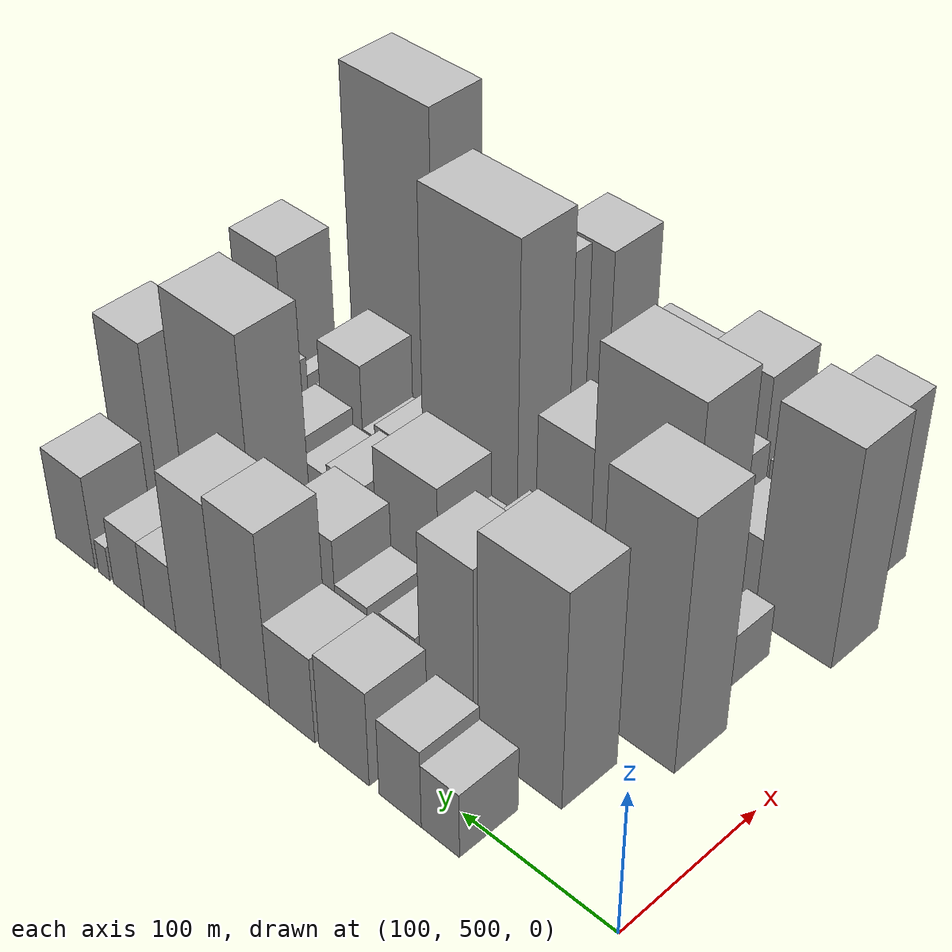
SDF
<sdf version="1.6">
 <world name="default">
  <model name="building_39">
   <static>1</static>
   <pose>100.0000 595.1342 0 0.000000 0.000000 0.000000</pose>
   <link name="link">
    <pose>0 0 22.50 0 0 0</pose>
    <collision name="collision"><geometry><box><size>40.0000 25.6913 45.0000</size></box></geometry></collision>
    <visual name="visual">
     <cast_shadows>0</cast_shadows>
     <geometry><box><size>40.0000 25.6913 45.0000</size></box></geometry>
     <material>
      <script>
       <uri>model://HANNAS_wall/materials/scripts</uri>
       <uri>model://HANNAS_wall/materials/textures</uri>
       <name>vrc/HANNAS_wall</name>
      </script>
     </material>
    </visual>
   </link>
  </model>
  <model name="building_40">
   <static>1</static>
   <pose>100.0000 622.6248 0 0.000000 0.000000 0.000000</pose>
   <link name="link">
    <pose>0 0 27.00 0 0 0</pose>
    <collision name="collision"><geometry><box><size>40.0000 29.2899 54.0000</size></box></geometry></collision>
    <visual name="visual">
     <cast_shadows>0</cast_shadows>
     <geometry><box><size>40.0000 29.2899 54.0000</size></box></geometry>
     <material>
      <script>
       <uri>model://HANNAS_wall/materials/scripts</uri>
       <uri>model://HANNAS_wall/materials/textures</uri>
       <name>vrc/HANNAS_wall</name>
      </script>
     </material>
    </visual>
   </link>
  </model>
  <model name="building_41">
   <static>1</static>
   <pose>100.0000 662.3822 0 0.000000 0.000000 0.000000</pose>
   <link name="link">
    <pose>0 0 33.00 0 0 0</pose>
    <collision name="collision"><geometry><box><size>40.0000 36.2250 66.0000</size></box></geometry></collision>
    <visual name="visual">
     <cast_shadows>0</cast_shadows>
     <geometry><box><size>40.0000 36.2250 66.0000</size></box></geometry>
     <material>
      <script>
       <uri>model://HANNAS_wall/materials/scripts</uri>
       <uri>model://HANNAS_wall/materials/textures</uri>
       <name>vrc/HANNAS_wall</name>
      </script>
     </material>
    </visual>
   </link>
  </model>
  <model name="building_42">
   <static>1</static>
   <pose>100.0000 700.5594 0 0.000000 0.000000 0.000000</pose>
   <link name="link">
    <pose>0 0 30.00 0 0 0</pose>
    <collision name="collision"><geometry><box><size>40.0000 34.1293 60.0000</size></box></geometry></collision>
    <visual name="visual">
     <cast_shadows>0</cast_shadows>
     <geometry><box><size>40.0000 34.1293 60.0000</size></box></geometry>
     <material>
      <script>
       <uri>model://HANNAS_wall/materials/scripts</uri>
       <uri>model://HANNAS_wall/materials/textures</uri>
       <name>vrc/HANNAS_wall</name>
      </script>
     </material>
    </visual>
   </link>
  </model>
  <model name="building_43">
   <static>1</static>
   <pose>100.0000 736.5330 0 0.000000 0.000000 0.000000</pose>
   <link name="link">
    <pose>0 0 60.00 0 0 0</pose>
    <collision name="collision"><geometry><box><size>40.0000 37.8179 120.0000</size></box></geometry></collision>
    <visual name="visual">
     <cast_shadows>0</cast_shadows>
     <geometry><box><size>40.0000 37.8179 120.0000</size></box></geometry>
     <material>
      <script>
       <uri>model://HANNAS_wall/materials/scripts</uri>
       <uri>model://HANNAS_wall/materials/textures</uri>
       <name>vrc/HANNAS_wall</name>
      </script>
     </material>
    </visual>
   </link>
  </model>
  <model name="building_44">
   <static>1</static>
   <pose>100.0000 773.5364 0 0.000000 0.000000 0.000000</pose>
   <link name="link">
    <pose>0 0 57.00 0 0 0</pose>
    <collision name="collision"><geometry><box><size>40.0000 36.1888 114.0000</size></box></geometry></collision>
    <visual name="visual">
     <cast_shadows>0</cast_shadows>
     <geometry><box><size>40.0000 36.1888 114.0000</size></box></geometry>
     <material>
      <script>
       <uri>model://HANNAS_wall/materials/scripts</uri>
       <uri>model://HANNAS_wall/materials/textures</uri>
       <name>vrc/HANNAS_wall</name>
      </script>
     </material>
    </visual>
   </link>
  </model>
  <model name="building_45">
   <static>1</static>
   <pose>100.0000 804.7815 0 0.000000 0.000000 0.000000</pose>
   <link name="link">
    <pose>0 0 24.00 0 0 0</pose>
    <collision name="collision"><geometry><box><size>40.0000 26.3016 48.0000</size></box></geometry></collision>
    <visual name="visual">
     <cast_shadows>0</cast_shadows>
     <geometry><box><size>40.0000 26.3016 48.0000</size></box></geometry>
     <material>
      <script>
       <uri>model://HANNAS_wall/materials/scripts</uri>
       <uri>model://HANNAS_wall/materials/textures</uri>
       <name>vrc/HANNAS_wall</name>
      </script>
     </material>
    </visual>
   </link>
  </model>
  <model name="building_46">
   <static>1</static>
   <pose>100.0000 831.1495 0 0.000000 0.000000 0.000000</pose>
   <link name="link">
    <pose>0 0 24.00 0 0 0</pose>
    <collision name="collision"><geometry><box><size>40.0000 26.4344 48.0000</size></box></geometry></collision>
    <visual name="visual">
     <cast_shadows>0</cast_shadows>
     <geometry><box><size>40.0000 26.4344 48.0000</size></box></geometry>
     <material>
      <script>
       <uri>model://HANNAS_wall/materials/scripts</uri>
       <uri>model://HANNAS_wall/materials/textures</uri>
       <name>vrc/HANNAS_wall</name>
      </script>
     </material>
    </visual>
   </link>
  </model>
  <model name="building_47">
   <static>1</static>
   <pose>100.0000 852.3052 0 0.000000 0.000000 0.000000</pose>
   <link name="link">
    <pose>0 0 12.00 0 0 0</pose>
    <collision name="collision"><geometry><box><size>40.0000 9.8770 24.0000</size></box></geometry></collision>
    <visual name="visual">
     <cast_shadows>0</cast_shadows>
     <geometry><box><size>40.0000 9.8770 24.0000</size></box></geometry>
     <material>
      <script>
       <uri>model://HANNAS_wall/materials/scripts</uri>
       <uri>model://HANNAS_wall/materials/textures</uri>
       <name>vrc/HANNAS_wall</name>
      </script>
     </material>
    </visual>
   </link>
  </model>
  <model name="building_48">
   <static>1</static>
   <pose>100.0000 877.6894 0 0.000000 0.000000 0.000000</pose>
   <link name="link">
    <pose>0 0 33.00 0 0 0</pose>
    <collision name="collision"><geometry><box><size>40.0000 34.8914 66.0000</size></box></geometry></collision>
    <visual name="visual">
     <cast_shadows>0</cast_shadows>
     <geometry><box><size>40.0000 34.8914 66.0000</size></box></geometry>
     <material>
      <script>
       <uri>model://HANNAS_wall/materials/scripts</uri>
       <uri>model://HANNAS_wall/materials/textures</uri>
       <name>vrc/HANNAS_wall</name>
      </script>
     </material>
    </visual>
   </link>
  </model>
  <model name="building_87">
   <static>1</static>
   <pose>155.0000 595.8088 0 0.000000 0.000000 0.000000</pose>
   <link name="link">
    <pose>0 0 73.50 0 0 0</pose>
    <collision name="collision"><geometry><box><size>40.0000 56.7399 147.0000</size></box></geometry></collision>
    <visual name="visual">
     <cast_shadows>0</cast_shadows>
     <geometry><box><size>40.0000 56.7399 147.0000</size></box></geometry>
     <material>
      <script>
       <uri>model://HANNAS_wall/materials/scripts</uri>
       <uri>model://HANNAS_wall/materials/textures</uri>
       <name>vrc/HANNAS_wall</name>
      </script>
     </material>
    </visual>
   </link>
  </model>
  <model name="building_88">
   <static>1</static>
   <pose>155.0000 645.8658 0 0.000000 0.000000 0.000000</pose>
   <link name="link">
    <pose>0 0 60.00 0 0 0</pose>
    <collision name="collision"><geometry><box><size>40.0000 37.3742 120.0000</size></box></geometry></collision>
    <visual name="visual">
     <cast_shadows>0</cast_shadows>
     <geometry><box><size>40.0000 37.3742 120.0000</size></box></geometry>
     <material>
      <script>
       <uri>model://HANNAS_wall/materials/scripts</uri>
       <uri>model://HANNAS_wall/materials/textures</uri>
       <name>vrc/HANNAS_wall</name>
      </script>
     </material>
    </visual>
   </link>
  </model>
  <model name="building_89">
   <static>1</static>
   <pose>155.0000 680.4578 0 0.000000 0.000000 0.000000</pose>
   <link name="link">
    <pose>0 0 22.50 0 0 0</pose>
    <collision name="collision"><geometry><box><size>40.0000 25.8099 45.0000</size></box></geometry></collision>
    <visual name="visual">
     <cast_shadows>0</cast_shadows>
     <geometry><box><size>40.0000 25.8099 45.0000</size></box></geometry>
     <material>
      <script>
       <uri>model://HANNAS_wall/materials/scripts</uri>
       <uri>model://HANNAS_wall/materials/textures</uri>
       <name>vrc/HANNAS_wall</name>
      </script>
     </material>
    </visual>
   </link>
  </model>
  <model name="building_90">
   <static>1</static>
   <pose>155.0000 714.4430 0 0.000000 0.000000 0.000000</pose>
   <link name="link">
    <pose>0 0 21.00 0 0 0</pose>
    <collision name="collision"><geometry><box><size>40.0000 24.1605 42.0000</size></box></geometry></collision>
    <visual name="visual">
     <cast_shadows>0</cast_shadows>
     <geometry><box><size>40.0000 24.1605 42.0000</size></box></geometry>
     <material>
      <script>
       <uri>model://HANNAS_wall/materials/scripts</uri>
       <uri>model://HANNAS_wall/materials/textures</uri>
       <name>vrc/HANNAS_wall</name>
      </script>
     </material>
    </visual>
   </link>
  </model>
  <model name="building_91">
   <static>1</static>
   <pose>155.0000 746.9468 0 0.000000 0.000000 0.000000</pose>
   <link name="link">
    <pose>0 0 36.00 0 0 0</pose>
    <collision name="collision"><geometry><box><size>40.0000 40.8471 72.0000</size></box></geometry></collision>
    <visual name="visual">
     <cast_shadows>0</cast_shadows>
     <geometry><box><size>40.0000 40.8471 72.0000</size></box></geometry>
     <material>
      <script>
       <uri>model://HANNAS_wall/materials/scripts</uri>
       <uri>model://HANNAS_wall/materials/textures</uri>
       <name>vrc/HANNAS_wall</name>
      </script>
     </material>
    </visual>
   </link>
  </model>
  <model name="building_92">
   <static>1</static>
   <pose>155.0000 777.3568 0 0.000000 0.000000 0.000000</pose>
   <link name="link">
    <pose>0 0 10.50 0 0 0</pose>
    <collision name="collision"><geometry><box><size>40.0000 9.9728 21.0000</size></box></geometry></collision>
    <visual name="visual">
     <cast_shadows>0</cast_shadows>
     <geometry><box><size>40.0000 9.9728 21.0000</size></box></geometry>
     <material>
      <script>
       <uri>model://HANNAS_wall/materials/scripts</uri>
       <uri>model://HANNAS_wall/materials/textures</uri>
       <name>vrc/HANNAS_wall</name>
      </script>
     </material>
    </visual>
   </link>
  </model>
  <model name="building_93">
   <static>1</static>
   <pose>155.0000 786.1074 0 0.000000 0.000000 0.000000</pose>
   <link name="link">
    <pose>0 0 9.00 0 0 0</pose>
    <collision name="collision"><geometry><box><size>40.0000 7.5286 18.0000</size></box></geometry></collision>
    <visual name="visual">
     <cast_shadows>0</cast_shadows>
     <geometry><box><size>40.0000 7.5286 18.0000</size></box></geometry>
     <material>
      <script>
       <uri>model://HANNAS_wall/materials/scripts</uri>
       <uri>model://HANNAS_wall/materials/textures</uri>
       <name>vrc/HANNAS_wall</name>
      </script>
     </material>
    </visual>
   </link>
  </model>
  <model name="building_94">
   <static>1</static>
   <pose>155.0000 819.0716 0 0.000000 0.000000 0.000000</pose>
   <link name="link">
    <pose>0 0 84.00 0 0 0</pose>
    <collision name="collision"><geometry><box><size>40.0000 58.3998 168.0000</size></box></geometry></collision>
    <visual name="visual">
     <cast_shadows>0</cast_shadows>
     <geometry><box><size>40.0000 58.3998 168.0000</size></box></geometry>
     <material>
      <script>
       <uri>model://HANNAS_wall/materials/scripts</uri>
       <uri>model://HANNAS_wall/materials/textures</uri>
       <name>vrc/HANNAS_wall</name>
      </script>
     </material>
    </visual>
   </link>
  </model>
  <model name="building_95">
   <static>1</static>
   <pose>155.0000 851.9384 0 0.000000 0.000000 0.000000</pose>
   <link name="link">
    <pose>0 0 9.00 0 0 0</pose>
    <collision name="collision"><geometry><box><size>40.0000 7.3339 18.0000</size></box></geometry></collision>
    <visual name="visual">
     <cast_shadows>0</cast_shadows>
     <geometry><box><size>40.0000 7.3339 18.0000</size></box></geometry>
     <material>
      <script>
       <uri>model://HANNAS_wall/materials/scripts</uri>
       <uri>model://HANNAS_wall/materials/textures</uri>
       <name>vrc/HANNAS_wall</name>
      </script>
     </material>
    </visual>
   </link>
  </model>
  <model name="building_96">
   <static>1</static>
   <pose>155.0000 859.8245 0 0.000000 0.000000 0.000000</pose>
   <link name="link">
    <pose>0 0 9.00 0 0 0</pose>
    <collision name="collision"><geometry><box><size>40.0000 8.4382 18.0000</size></box></geometry></collision>
    <visual name="visual">
     <cast_shadows>0</cast_shadows>
     <geometry><box><size>40.0000 8.4382 18.0000</size></box></geometry>
     <material>
      <script>
       <uri>model://HANNAS_wall/materials/scripts</uri>
       <uri>model://HANNAS_wall/materials/textures</uri>
       <name>vrc/HANNAS_wall</name>
      </script>
     </material>
    </visual>
   </link>
  </model>
  <model name="building_97">
   <static>1</static>
   <pose>155.0000 892.3341 0 0.000000 0.000000 0.000000</pose>
   <link name="link">
    <pose>0 0 58.50 0 0 0</pose>
    <collision name="collision"><geometry><box><size>40.0000 38.5811 117.0000</size></box></geometry></collision>
    <visual name="visual">
     <cast_shadows>0</cast_shadows>
     <geometry><box><size>40.0000 38.5811 117.0000</size></box></geometry>
     <material>
      <script>
       <uri>model://HANNAS_wall/materials/scripts</uri>
       <uri>model://HANNAS_wall/materials/textures</uri>
       <name>vrc/HANNAS_wall</name>
      </script>
     </material>
    </visual>
   </link>
  </model>
  <model name="building_140">
   <static>1</static>
   <pose>210.0000 569.0196 0 0.000000 0.000000 0.000000</pose>
   <link name="link">
    <pose>0 0 85.50 0 0 0</pose>
    <collision name="collision"><geometry><box><size>40.0000 51.9109 171.0000</size></box></geometry></collision>
    <visual name="visual">
     <cast_shadows>0</cast_shadows>
     <geometry><box><size>40.0000 51.9109 171.0000</size></box></geometry>
     <material>
      <script>
       <uri>model://HANNAS_wall/materials/scripts</uri>
       <uri>model://HANNAS_wall/materials/textures</uri>
       <name>vrc/HANNAS_wall</name>
      </script>
     </material>
    </visual>
   </link>
  </model>
  <model name="building_141">
   <static>1</static>
   <pose>210.0000 612.9640 0 0.000000 0.000000 0.000000</pose>
   <link name="link">
    <pose>0 0 19.50 0 0 0</pose>
    <collision name="collision"><geometry><box><size>40.0000 21.9777 39.0000</size></box></geometry></collision>
    <visual name="visual">
     <cast_shadows>0</cast_shadows>
     <geometry><box><size>40.0000 21.9777 39.0000</size></box></geometry>
     <material>
      <script>
       <uri>model://HANNAS_wall/materials/scripts</uri>
       <uri>model://HANNAS_wall/materials/textures</uri>
       <name>vrc/HANNAS_wall</name>
      </script>
     </material>
    </visual>
   </link>
  </model>
  <model name="building_142">
   <static>1</static>
   <pose>210.0000 631.9946 0 0.000000 0.000000 0.000000</pose>
   <link name="link">
    <pose>0 0 15.00 0 0 0</pose>
    <collision name="collision"><geometry><box><size>40.0000 16.0836 30.0000</size></box></geometry></collision>
    <visual name="visual">
     <cast_shadows>0</cast_shadows>
     <geometry><box><size>40.0000 16.0836 30.0000</size></box></geometry>
     <material>
      <script>
       <uri>model://HANNAS_wall/materials/scripts</uri>
       <uri>model://HANNAS_wall/materials/textures</uri>
       <name>vrc/HANNAS_wall</name>
      </script>
     </material>
    </visual>
   </link>
  </model>
  <model name="building_143">
   <static>1</static>
   <pose>210.0000 659.8791 0 0.000000 0.000000 0.000000</pose>
   <link name="link">
    <pose>0 0 37.50 0 0 0</pose>
    <collision name="collision"><geometry><box><size>40.0000 39.6853 75.0000</size></box></geometry></collision>
    <visual name="visual">
     <cast_shadows>0</cast_shadows>
     <geometry><box><size>40.0000 39.6853 75.0000</size></box></geometry>
     <material>
      <script>
       <uri>model://HANNAS_wall/materials/scripts</uri>
       <uri>model://HANNAS_wall/materials/textures</uri>
       <name>vrc/HANNAS_wall</name>
      </script>
     </material>
    </visual>
   </link>
  </model>
  <model name="building_144">
   <static>1</static>
   <pose>210.0000 693.3320 0 0.000000 0.000000 0.000000</pose>
   <link name="link">
    <pose>0 0 27.00 0 0 0</pose>
    <collision name="collision"><geometry><box><size>40.0000 27.2205 54.0000</size></box></geometry></collision>
    <visual name="visual">
     <cast_shadows>0</cast_shadows>
     <geometry><box><size>40.0000 27.2205 54.0000</size></box></geometry>
     <material>
      <script>
       <uri>model://HANNAS_wall/materials/scripts</uri>
       <uri>model://HANNAS_wall/materials/textures</uri>
       <name>vrc/HANNAS_wall</name>
      </script>
     </material>
    </visual>
   </link>
  </model>
  <model name="building_145">
   <static>1</static>
   <pose>210.0000 730.7044 0 0.000000 0.000000 0.000000</pose>
   <link name="link">
    <pose>0 0 42.00 0 0 0</pose>
    <collision name="collision"><geometry><box><size>40.0000 47.5244 84.0000</size></box></geometry></collision>
    <visual name="visual">
     <cast_shadows>0</cast_shadows>
     <geometry><box><size>40.0000 47.5244 84.0000</size></box></geometry>
     <material>
      <script>
       <uri>model://HANNAS_wall/materials/scripts</uri>
       <uri>model://HANNAS_wall/materials/textures</uri>
       <name>vrc/HANNAS_wall</name>
      </script>
     </material>
    </visual>
   </link>
  </model>
  <model name="building_146">
   <static>1</static>
   <pose>210.0000 778.3762 0 0.000000 0.000000 0.000000</pose>
   <link name="link">
    <pose>0 0 24.00 0 0 0</pose>
    <collision name="collision"><geometry><box><size>40.0000 27.8193 48.0000</size></box></geometry></collision>
    <visual name="visual">
     <cast_shadows>0</cast_shadows>
     <geometry><box><size>40.0000 27.8193 48.0000</size></box></geometry>
     <material>
      <script>
       <uri>model://HANNAS_wall/materials/scripts</uri>
       <uri>model://HANNAS_wall/materials/textures</uri>
       <name>vrc/HANNAS_wall</name>
      </script>
     </material>
    </visual>
   </link>
  </model>
  <model name="building_147">
   <static>1</static>
   <pose>210.0000 803.3097 0 0.000000 0.000000 0.000000</pose>
   <link name="link">
    <pose>0 0 19.50 0 0 0</pose>
    <collision name="collision"><geometry><box><size>40.0000 22.0477 39.0000</size></box></geometry></collision>
    <visual name="visual">
     <cast_shadows>0</cast_shadows>
     <geometry><box><size>40.0000 22.0477 39.0000</size></box></geometry>
     <material>
      <script>
       <uri>model://HANNAS_wall/materials/scripts</uri>
       <uri>model://HANNAS_wall/materials/textures</uri>
       <name>vrc/HANNAS_wall</name>
      </script>
     </material>
    </visual>
   </link>
  </model>
  <model name="building_148">
   <static>1</static>
   <pose>210.0000 829.3695 0 0.000000 0.000000 0.000000</pose>
   <link name="link">
    <pose>0 0 25.50 0 0 0</pose>
    <collision name="collision"><geometry><box><size>40.0000 30.0719 51.0000</size></box></geometry></collision>
    <visual name="visual">
     <cast_shadows>0</cast_shadows>
     <geometry><box><size>40.0000 30.0719 51.0000</size></box></geometry>
     <material>
      <script>
       <uri>model://HANNAS_wall/materials/scripts</uri>
       <uri>model://HANNAS_wall/materials/textures</uri>
       <name>vrc/HANNAS_wall</name>
      </script>
     </material>
    </visual>
   </link>
  </model>
  <model name="building_149">
   <static>1</static>
   <pose>210.0000 868.0672 0 0.000000 0.000000 0.000000</pose>
   <link name="link">
    <pose>0 0 33.00 0 0 0</pose>
    <collision name="collision"><geometry><box><size>40.0000 33.3234 66.0000</size></box></geometry></collision>
    <visual name="visual">
     <cast_shadows>0</cast_shadows>
     <geometry><box><size>40.0000 33.3234 66.0000</size></box></geometry>
     <material>
      <script>
       <uri>model://HANNAS_wall/materials/scripts</uri>
       <uri>model://HANNAS_wall/materials/textures</uri>
       <name>vrc/HANNAS_wall</name>
      </script>
     </material>
    </visual>
   </link>
  </model>
  <model name="building_150">
   <static>1</static>
   <pose>210.0000 893.6902 0 0.000000 0.000000 0.000000</pose>
   <link name="link">
    <pose>0 0 16.50 0 0 0</pose>
    <collision name="collision"><geometry><box><size>40.0000 17.9226 33.0000</size></box></geometry></collision>
    <visual name="visual">
     <cast_shadows>0</cast_shadows>
     <geometry><box><size>40.0000 17.9226 33.0000</size></box></geometry>
     <material>
      <script>
       <uri>model://HANNAS_wall/materials/scripts</uri>
       <uri>model://HANNAS_wall/materials/textures</uri>
       <name>vrc/HANNAS_wall</name>
      </script>
     </material>
    </visual>
   </link>
  </model>
  <model name="building_196">
   <static>1</static>
   <pose>265.0000 568.7292 0 0.000000 0.000000 0.000000</pose>
   <link name="link">
    <pose>0 0 18.00 0 0 0</pose>
    <collision name="collision"><geometry><box><size>40.0000 18.0015 36.0000</size></box></geometry></collision>
    <visual name="visual">
     <cast_shadows>0</cast_shadows>
     <geometry><box><size>40.0000 18.0015 36.0000</size></box></geometry>
     <material>
      <script>
       <uri>model://HANNAS_wall/materials/scripts</uri>
       <uri>model://HANNAS_wall/materials/textures</uri>
       <name>vrc/HANNAS_wall</name>
      </script>
     </material>
    </visual>
   </link>
  </model>
  <model name="building_197">
   <static>1</static>
   <pose>265.0000 616.9349 0 0.000000 0.000000 0.000000</pose>
   <link name="link">
    <pose>0 0 90.00 0 0 0</pose>
    <collision name="collision"><geometry><box><size>40.0000 66.4099 180.0000</size></box></geometry></collision>
    <visual name="visual">
     <cast_shadows>0</cast_shadows>
     <geometry><box><size>40.0000 66.4099 180.0000</size></box></geometry>
     <material>
      <script>
       <uri>model://HANNAS_wall/materials/scripts</uri>
       <uri>model://HANNAS_wall/materials/textures</uri>
       <name>vrc/HANNAS_wall</name>
      </script>
     </material>
    </visual>
   </link>
  </model>
  <model name="building_198">
   <static>1</static>
   <pose>265.0000 669.4699 0 0.000000 0.000000 0.000000</pose>
   <link name="link">
    <pose>0 0 55.50 0 0 0</pose>
    <collision name="collision"><geometry><box><size>40.0000 38.6600 111.0000</size></box></geometry></collision>
    <visual name="visual">
     <cast_shadows>0</cast_shadows>
     <geometry><box><size>40.0000 38.6600 111.0000</size></box></geometry>
     <material>
      <script>
       <uri>model://HANNAS_wall/materials/scripts</uri>
       <uri>model://HANNAS_wall/materials/textures</uri>
       <name>vrc/HANNAS_wall</name>
      </script>
     </material>
    </visual>
   </link>
  </model>
  <model name="building_199">
   <static>1</static>
   <pose>265.0000 691.9296 0 0.000000 0.000000 0.000000</pose>
   <link name="link">
    <pose>0 0 7.50 0 0 0</pose>
    <collision name="collision"><geometry><box><size>40.0000 6.2594 15.0000</size></box></geometry></collision>
    <visual name="visual">
     <cast_shadows>0</cast_shadows>
     <geometry><box><size>40.0000 6.2594 15.0000</size></box></geometry>
     <material>
      <script>
       <uri>model://HANNAS_wall/materials/scripts</uri>
       <uri>model://HANNAS_wall/materials/textures</uri>
       <name>vrc/HANNAS_wall</name>
      </script>
     </material>
    </visual>
   </link>
  </model>
  <model name="building_200">
   <static>1</static>
   <pose>265.0000 698.7263 0 0.000000 0.000000 0.000000</pose>
   <link name="link">
    <pose>0 0 7.50 0 0 0</pose>
    <collision name="collision"><geometry><box><size>40.0000 7.3342 15.0000</size></box></geometry></collision>
    <visual name="visual">
     <cast_shadows>0</cast_shadows>
     <geometry><box><size>40.0000 7.3342 15.0000</size></box></geometry>
     <material>
      <script>
       <uri>model://HANNAS_wall/materials/scripts</uri>
       <uri>model://HANNAS_wall/materials/textures</uri>
       <name>vrc/HANNAS_wall</name>
      </script>
     </material>
    </visual>
   </link>
  </model>
  <model name="building_201">
   <static>1</static>
   <pose>265.0000 738.2359 0 0.000000 0.000000 0.000000</pose>
   <link name="link">
    <pose>0 0 106.50 0 0 0</pose>
    <collision name="collision"><geometry><box><size>40.0000 71.6851 213.0000</size></box></geometry></collision>
    <visual name="visual">
     <cast_shadows>0</cast_shadows>
     <geometry><box><size>40.0000 71.6851 213.0000</size></box></geometry>
     <material>
      <script>
       <uri>model://HANNAS_wall/materials/scripts</uri>
       <uri>model://HANNAS_wall/materials/textures</uri>
       <name>vrc/HANNAS_wall</name>
      </script>
     </material>
    </visual>
   </link>
  </model>
  <model name="building_202">
   <static>1</static>
   <pose>265.0000 790.6665 0 0.000000 0.000000 0.000000</pose>
   <link name="link">
    <pose>0 0 15.00 0 0 0</pose>
    <collision name="collision"><geometry><box><size>40.0000 15.1760 30.0000</size></box></geometry></collision>
    <visual name="visual">
     <cast_shadows>0</cast_shadows>
     <geometry><box><size>40.0000 15.1760 30.0000</size></box></geometry>
     <material>
      <script>
       <uri>model://HANNAS_wall/materials/scripts</uri>
       <uri>model://HANNAS_wall/materials/textures</uri>
       <name>vrc/HANNAS_wall</name>
      </script>
     </material>
    </visual>
   </link>
  </model>
  <model name="building_203">
   <static>1</static>
   <pose>265.0000 805.8300 0 0.000000 0.000000 0.000000</pose>
   <link name="link">
    <pose>0 0 15.00 0 0 0</pose>
    <collision name="collision"><geometry><box><size>40.0000 15.1511 30.0000</size></box></geometry></collision>
    <visual name="visual">
     <cast_shadows>0</cast_shadows>
     <geometry><box><size>40.0000 15.1511 30.0000</size></box></geometry>
     <material>
      <script>
       <uri>model://HANNAS_wall/materials/scripts</uri>
       <uri>model://HANNAS_wall/materials/textures</uri>
       <name>vrc/HANNAS_wall</name>
      </script>
     </material>
    </visual>
   </link>
  </model>
  <model name="building_204">
   <static>1</static>
   <pose>265.0000 818.5805 0 0.000000 0.000000 0.000000</pose>
   <link name="link">
    <pose>0 0 10.50 0 0 0</pose>
    <collision name="collision"><geometry><box><size>40.0000 10.3499 21.0000</size></box></geometry></collision>
    <visual name="visual">
     <cast_shadows>0</cast_shadows>
     <geometry><box><size>40.0000 10.3499 21.0000</size></box></geometry>
     <material>
      <script>
       <uri>model://HANNAS_wall/materials/scripts</uri>
       <uri>model://HANNAS_wall/materials/textures</uri>
       <name>vrc/HANNAS_wall</name>
      </script>
     </material>
    </visual>
   </link>
  </model>
  <model name="building_205">
   <static>1</static>
   <pose>265.0000 841.2855 0 0.000000 0.000000 0.000000</pose>
   <link name="link">
    <pose>0 0 33.00 0 0 0</pose>
    <collision name="collision"><geometry><box><size>40.0000 35.0602 66.0000</size></box></geometry></collision>
    <visual name="visual">
     <cast_shadows>0</cast_shadows>
     <geometry><box><size>40.0000 35.0602 66.0000</size></box></geometry>
     <material>
      <script>
       <uri>model://HANNAS_wall/materials/scripts</uri>
       <uri>model://HANNAS_wall/materials/textures</uri>
       <name>vrc/HANNAS_wall</name>
      </script>
     </material>
    </visual>
   </link>
  </model>
  <model name="building_206">
   <static>1</static>
   <pose>265.0000 867.0275 0 0.000000 0.000000 0.000000</pose>
   <link name="link">
    <pose>0 0 10.50 0 0 0</pose>
    <collision name="collision"><geometry><box><size>40.0000 10.4238 21.0000</size></box></geometry></collision>
    <visual name="visual">
     <cast_shadows>0</cast_shadows>
     <geometry><box><size>40.0000 10.4238 21.0000</size></box></geometry>
     <material>
      <script>
       <uri>model://HANNAS_wall/materials/scripts</uri>
       <uri>model://HANNAS_wall/materials/textures</uri>
       <name>vrc/HANNAS_wall</name>
      </script>
     </material>
    </visual>
   </link>
  </model>
  <model name="building_207">
   <static>1</static>
   <pose>265.0000 875.4420 0 0.000000 0.000000 0.000000</pose>
   <link name="link">
    <pose>0 0 7.50 0 0 0</pose>
    <collision name="collision"><geometry><box><size>40.0000 6.4050 15.0000</size></box></geometry></collision>
    <visual name="visual">
     <cast_shadows>0</cast_shadows>
     <geometry><box><size>40.0000 6.4050 15.0000</size></box></geometry>
     <material>
      <script>
       <uri>model://HANNAS_wall/materials/scripts</uri>
       <uri>model://HANNAS_wall/materials/textures</uri>
       <name>vrc/HANNAS_wall</name>
      </script>
     </material>
    </visual>
   </link>
  </model>
  <model name="building_208">
   <static>1</static>
   <pose>265.0000 884.1405 0 0.000000 0.000000 0.000000</pose>
   <link name="link">
    <pose>0 0 12.00 0 0 0</pose>
    <collision name="collision"><geometry><box><size>40.0000 10.9920 24.0000</size></box></geometry></collision>
    <visual name="visual">
     <cast_shadows>0</cast_shadows>
     <geometry><box><size>40.0000 10.9920 24.0000</size></box></geometry>
     <material>
      <script>
       <uri>model://HANNAS_wall/materials/scripts</uri>
       <uri>model://HANNAS_wall/materials/textures</uri>
       <name>vrc/HANNAS_wall</name>
      </script>
     </material>
    </visual>
   </link>
  </model>
  <model name="building_209">
   <static>1</static>
   <pose>265.0000 909.6997 0 0.000000 0.000000 0.000000</pose>
   <link name="link">
    <pose>0 0 54.00 0 0 0</pose>
    <collision name="collision"><geometry><box><size>40.0000 40.1265 108.0000</size></box></geometry></collision>
    <visual name="visual">
     <cast_shadows>0</cast_shadows>
     <geometry><box><size>40.0000 40.1265 108.0000</size></box></geometry>
     <material>
      <script>
       <uri>model://HANNAS_wall/materials/scripts</uri>
       <uri>model://HANNAS_wall/materials/textures</uri>
       <name>vrc/HANNAS_wall</name>
      </script>
     </material>
    </visual>
   </link>
  </model>
  <model name="building_250">
   <static>1</static>
   <pose>320.0000 555.9345 0 0.000000 0.000000 0.000000</pose>
   <link name="link">
    <pose>0 0 75.00 0 0 0</pose>
    <collision name="collision"><geometry><box><size>40.0000 50.5425 150.0000</size></box></geometry></collision>
    <visual name="visual">
     <cast_shadows>0</cast_shadows>
     <geometry><box><size>40.0000 50.5425 150.0000</size></box></geometry>
     <material>
      <script>
       <uri>model://HANNAS_wall/materials/scripts</uri>
       <uri>model://HANNAS_wall/materials/textures</uri>
       <name>vrc/HANNAS_wall</name>
      </script>
     </material>
    </visual>
   </link>
  </model>
  <model name="building_251">
   <static>1</static>
   <pose>320.0000 596.1748 0 0.000000 0.000000 0.000000</pose>
   <link name="link">
    <pose>0 0 28.50 0 0 0</pose>
    <collision name="collision"><geometry><box><size>40.0000 29.9381 57.0000</size></box></geometry></collision>
    <visual name="visual">
     <cast_shadows>0</cast_shadows>
     <geometry><box><size>40.0000 29.9381 57.0000</size></box></geometry>
     <material>
      <script>
       <uri>model://HANNAS_wall/materials/scripts</uri>
       <uri>model://HANNAS_wall/materials/textures</uri>
       <name>vrc/HANNAS_wall</name>
      </script>
     </material>
    </visual>
   </link>
  </model>
  <model name="building_252">
   <static>1</static>
   <pose>320.0000 631.5986 0 0.000000 0.000000 0.000000</pose>
   <link name="link">
    <pose>0 0 40.50 0 0 0</pose>
    <collision name="collision"><geometry><box><size>40.0000 40.9094 81.0000</size></box></geometry></collision>
    <visual name="visual">
     <cast_shadows>0</cast_shadows>
     <geometry><box><size>40.0000 40.9094 81.0000</size></box></geometry>
     <material>
      <script>
       <uri>model://HANNAS_wall/materials/scripts</uri>
       <uri>model://HANNAS_wall/materials/textures</uri>
       <name>vrc/HANNAS_wall</name>
      </script>
     </material>
    </visual>
   </link>
  </model>
  <model name="building_253">
   <static>1</static>
   <pose>320.0000 767.5211 0 0.000000 0.000000 0.000000</pose>
   <link name="link">
    <pose>0 0 72.00 0 0 0</pose>
    <collision name="collision"><geometry><box><size>40.0000 56.9785 144.0000</size></box></geometry></collision>
    <visual name="visual">
     <cast_shadows>0</cast_shadows>
     <geometry><box><size>40.0000 56.9785 144.0000</size></box></geometry>
     <material>
      <script>
       <uri>model://HANNAS_wall/materials/scripts</uri>
       <uri>model://HANNAS_wall/materials/textures</uri>
       <name>vrc/HANNAS_wall</name>
      </script>
     </material>
    </visual>
   </link>
  </model>
  <model name="building_254">
   <static>1</static>
   <pose>320.0000 806.7937 0 0.000000 0.000000 0.000000</pose>
   <link name="link">
    <pose>0 0 21.00 0 0 0</pose>
    <collision name="collision"><geometry><box><size>40.0000 21.5667 42.0000</size></box></geometry></collision>
    <visual name="visual">
     <cast_shadows>0</cast_shadows>
     <geometry><box><size>40.0000 21.5667 42.0000</size></box></geometry>
     <material>
      <script>
       <uri>model://HANNAS_wall/materials/scripts</uri>
       <uri>model://HANNAS_wall/materials/textures</uri>
       <name>vrc/HANNAS_wall</name>
      </script>
     </material>
    </visual>
   </link>
  </model>
  <model name="building_255">
   <static>1</static>
   <pose>320.0000 856.2977 0 0.000000 0.000000 0.000000</pose>
   <link name="link">
    <pose>0 0 105.00 0 0 0</pose>
    <collision name="collision"><geometry><box><size>40.0000 69.4411 210.0000</size></box></geometry></collision>
    <visual name="visual">
     <cast_shadows>0</cast_shadows>
     <geometry><box><size>40.0000 69.4411 210.0000</size></box></geometry>
     <material>
      <script>
       <uri>model://HANNAS_wall/materials/scripts</uri>
       <uri>model://HANNAS_wall/materials/textures</uri>
       <name>vrc/HANNAS_wall</name>
      </script>
     </material>
    </visual>
   </link>
  </model>
  <model name="building_299">
   <static>1</static>
   <pose>375.0000 570.8799 0 0.000000 0.000000 0.000000</pose>
   <link name="link">
    <pose>0 0 60.00 0 0 0</pose>
    <collision name="collision"><geometry><box><size>40.0000 37.0758 120.0000</size></box></geometry></collision>
    <visual name="visual">
     <cast_shadows>0</cast_shadows>
     <geometry><box><size>40.0000 37.0758 120.0000</size></box></geometry>
     <material>
      <script>
       <uri>model://HANNAS_wall/materials/scripts</uri>
       <uri>model://HANNAS_wall/materials/textures</uri>
       <name>vrc/HANNAS_wall</name>
      </script>
     </material>
    </visual>
   </link>
  </model>
  <model name="building_300">
   <static>1</static>
   <pose>375.0000 604.6416 0 0.000000 0.000000 0.000000</pose>
   <link name="link">
    <pose>0 0 27.00 0 0 0</pose>
    <collision name="collision"><geometry><box><size>40.0000 30.4475 54.0000</size></box></geometry></collision>
    <visual name="visual">
     <cast_shadows>0</cast_shadows>
     <geometry><box><size>40.0000 30.4475 54.0000</size></box></geometry>
     <material>
      <script>
       <uri>model://HANNAS_wall/materials/scripts</uri>
       <uri>model://HANNAS_wall/materials/textures</uri>
       <name>vrc/HANNAS_wall</name>
      </script>
     </material>
    </visual>
   </link>
  </model>
  <model name="building_301">
   <static>1</static>
   <pose>375.0000 644.7754 0 0.000000 0.000000 0.000000</pose>
   <link name="link">
    <pose>0 0 54.00 0 0 0</pose>
    <collision name="collision"><geometry><box><size>40.0000 41.8200 108.0000</size></box></geometry></collision>
    <visual name="visual">
     <cast_shadows>0</cast_shadows>
     <geometry><box><size>40.0000 41.8200 108.0000</size></box></geometry>
     <material>
      <script>
       <uri>model://HANNAS_wall/materials/scripts</uri>
       <uri>model://HANNAS_wall/materials/textures</uri>
       <name>vrc/HANNAS_wall</name>
      </script>
     </material>
    </visual>
   </link>
  </model>
  <model name="building_302">
   <static>1</static>
   <pose>375.0000 674.8366 0 0.000000 0.000000 0.000000</pose>
   <link name="link">
    <pose>0 0 16.50 0 0 0</pose>
    <collision name="collision"><geometry><box><size>40.0000 18.3024 33.0000</size></box></geometry></collision>
    <visual name="visual">
     <cast_shadows>0</cast_shadows>
     <geometry><box><size>40.0000 18.3024 33.0000</size></box></geometry>
     <material>
      <script>
       <uri>model://HANNAS_wall/materials/scripts</uri>
       <uri>model://HANNAS_wall/materials/textures</uri>
       <name>vrc/HANNAS_wall</name>
      </script>
     </material>
    </visual>
   </link>
  </model>
  <model name="building_303">
   <static>1</static>
   <pose>375.0000 705.1393 0 0.000000 0.000000 0.000000</pose>
   <link name="link">
    <pose>0 0 40.50 0 0 0</pose>
    <collision name="collision"><geometry><box><size>40.0000 42.3030 81.0000</size></box></geometry></collision>
    <visual name="visual">
     <cast_shadows>0</cast_shadows>
     <geometry><box><size>40.0000 42.3030 81.0000</size></box></geometry>
     <material>
      <script>
       <uri>model://HANNAS_wall/materials/scripts</uri>
       <uri>model://HANNAS_wall/materials/textures</uri>
       <name>vrc/HANNAS_wall</name>
      </script>
     </material>
    </visual>
   </link>
  </model>
  <model name="building_304">
   <static>1</static>
   <pose>375.0000 755.8801 0 0.000000 0.000000 0.000000</pose>
   <link name="link">
    <pose>0 0 66.00 0 0 0</pose>
    <collision name="collision"><geometry><box><size>40.0000 41.1786 132.0000</size></box></geometry></collision>
    <visual name="visual">
     <cast_shadows>0</cast_shadows>
     <geometry><box><size>40.0000 41.1786 132.0000</size></box></geometry>
     <material>
      <script>
       <uri>model://HANNAS_wall/materials/scripts</uri>
       <uri>model://HANNAS_wall/materials/textures</uri>
       <name>vrc/HANNAS_wall</name>
      </script>
     </material>
    </visual>
   </link>
  </model>
  <model name="building_305">
   <static>1</static>
   <pose>375.0000 788.6691 0 0.000000 0.000000 0.000000</pose>
   <link name="link">
    <pose>0 0 24.00 0 0 0</pose>
    <collision name="collision"><geometry><box><size>40.0000 24.3993 48.0000</size></box></geometry></collision>
    <visual name="visual">
     <cast_shadows>0</cast_shadows>
     <geometry><box><size>40.0000 24.3993 48.0000</size></box></geometry>
     <material>
      <script>
       <uri>model://HANNAS_wall/materials/scripts</uri>
       <uri>model://HANNAS_wall/materials/textures</uri>
       <name>vrc/HANNAS_wall</name>
      </script>
     </material>
    </visual>
   </link>
  </model>
  <model name="building_306">
   <static>1</static>
   <pose>375.0000 820.5735 0 0.000000 0.000000 0.000000</pose>
   <link name="link">
    <pose>0 0 36.00 0 0 0</pose>
    <collision name="collision"><geometry><box><size>40.0000 39.4096 72.0000</size></box></geometry></collision>
    <visual name="visual">
     <cast_shadows>0</cast_shadows>
     <geometry><box><size>40.0000 39.4096 72.0000</size></box></geometry>
     <material>
      <script>
       <uri>model://HANNAS_wall/materials/scripts</uri>
       <uri>model://HANNAS_wall/materials/textures</uri>
       <name>vrc/HANNAS_wall</name>
      </script>
     </material>
    </visual>
   </link>
  </model>
  <model name="building_307">
   <static>1</static>
   <pose>375.0000 856.7816 0 0.000000 0.000000 0.000000</pose>
   <link name="link">
    <pose>0 0 28.50 0 0 0</pose>
    <collision name="collision"><geometry><box><size>40.0000 33.0064 57.0000</size></box></geometry></collision>
    <visual name="visual">
     <cast_shadows>0</cast_shadows>
     <geometry><box><size>40.0000 33.0064 57.0000</size></box></geometry>
     <material>
      <script>
       <uri>model://HANNAS_wall/materials/scripts</uri>
       <uri>model://HANNAS_wall/materials/textures</uri>
       <name>vrc/HANNAS_wall</name>
      </script>
     </material>
    </visual>
   </link>
  </model>
  <model name="building_308">
   <static>1</static>
   <pose>375.0000 891.3687 0 0.000000 0.000000 0.000000</pose>
   <link name="link">
    <pose>0 0 31.50 0 0 0</pose>
    <collision name="collision"><geometry><box><size>40.0000 36.1678 63.0000</size></box></geometry></collision>
    <visual name="visual">
     <cast_shadows>0</cast_shadows>
     <geometry><box><size>40.0000 36.1678 63.0000</size></box></geometry>
     <material>
      <script>
       <uri>model://HANNAS_wall/materials/scripts</uri>
       <uri>model://HANNAS_wall/materials/textures</uri>
       <name>vrc/HANNAS_wall</name>
      </script>
     </material>
    </visual>
   </link>
  </model>
 </world>
</sdf>
